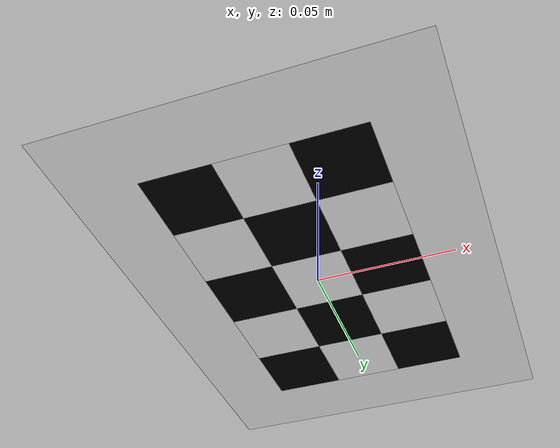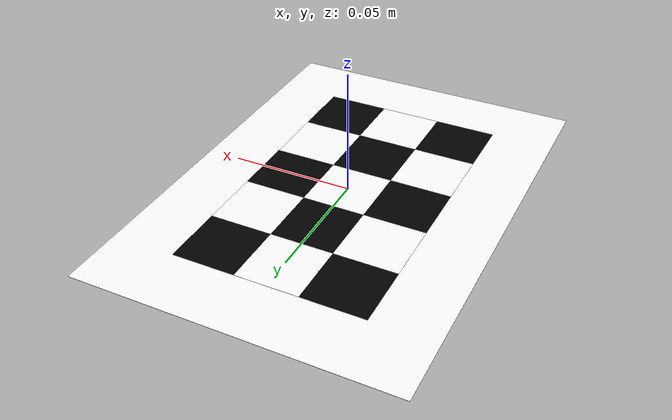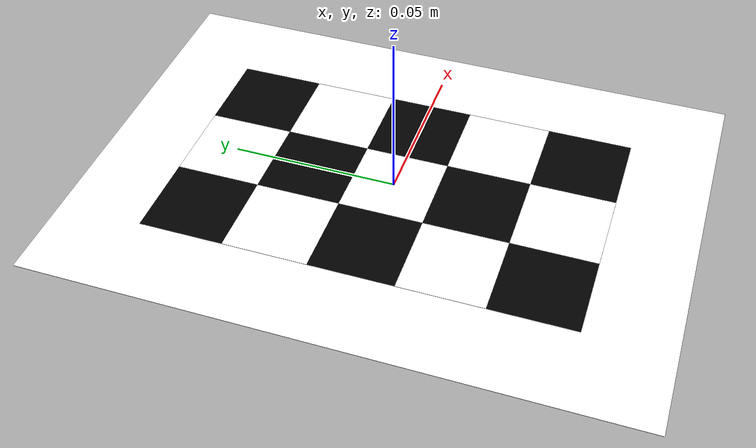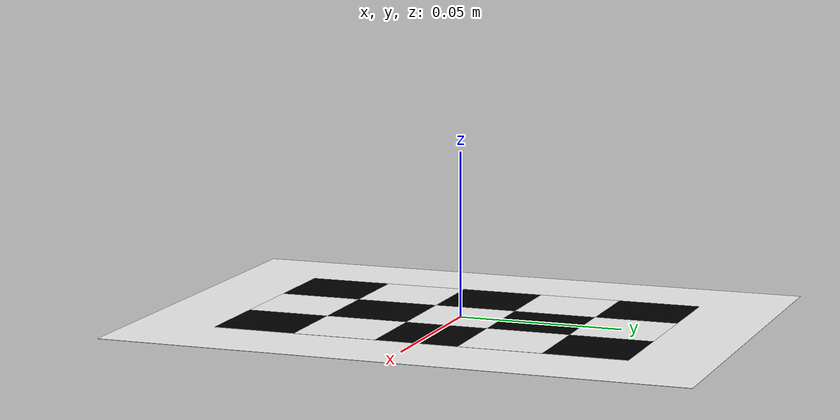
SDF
<?xml version="1.0"?>
<sdf version="1.4">
  <model name="checkerboard_3_5_0_0254">
  <static>true</static>
  <link name="checkerboard_3_5_0_0254_body">
      <visual name="checker_0_0">
        <pose>-0.0254 -0.0508 0 0 0 0</pose>
        <geometry>
          <box>
            <size>0.0254 0.0254 0.0002</size>
          </box>
        </geometry>
        <material>
          <ambient>0 0 0 1</ambient>
          <diffuse>0 0 0 1</diffuse>
          <specular>0 0 0 1</specular>
          <emissive>0 0 0 1</emissive>
        </material>
        <plugin
            filename="ignition-gazebo-thermal-system"
            name="ignition::gazebo::systems::Thermal">
            <temperature>311.0</temperature>
        </plugin>
      </visual>
      <visual name="checker_0_1">
        <pose>-0.0254 -0.0254 0 0 0 0</pose>
        <geometry>
          <box>
            <size>0.0254 0.0254 0.0002</size>
          </box>
        </geometry>
        <material>
          <ambient>1 1 1 1</ambient>
          <diffuse>1 1 1 1</diffuse>
          <specular>1 1 1 1</specular>
          <emissive>1 1 1 1</emissive>
        </material>
        <plugin
            filename="ignition-gazebo-thermal-system"
            name="ignition::gazebo::systems::Thermal">
            <temperature>311.0</temperature>
        </plugin>
      </visual>
      <visual name="checker_0_2">
        <pose>-0.0254 0.0 0 0 0 0</pose>
        <geometry>
          <box>
            <size>0.0254 0.0254 0.0002</size>
          </box>
        </geometry>
        <material>
          <ambient>0 0 0 1</ambient>
          <diffuse>0 0 0 1</diffuse>
          <specular>0 0 0 1</specular>
          <emissive>0 0 0 1</emissive>
        </material>
        <plugin
            filename="ignition-gazebo-thermal-system"
            name="ignition::gazebo::systems::Thermal">
            <temperature>311.0</temperature>
        </plugin>
      </visual>
      <visual name="checker_0_3">
        <pose>-0.0254 0.0254 0 0 0 0</pose>
        <geometry>
          <box>
            <size>0.0254 0.0254 0.0002</size>
          </box>
        </geometry>
        <material>
          <ambient>1 1 1 1</ambient>
          <diffuse>1 1 1 1</diffuse>
          <specular>1 1 1 1</specular>
          <emissive>1 1 1 1</emissive>
        </material>
        <plugin
            filename="ignition-gazebo-thermal-system"
            name="ignition::gazebo::systems::Thermal">
            <temperature>311.0</temperature>
        </plugin>
      </visual>
      <visual name="checker_0_4">
        <pose>-0.0254 0.0508 0 0 0 0</pose>
        <geometry>
          <box>
            <size>0.0254 0.0254 0.0002</size>
          </box>
        </geometry>
        <material>
          <ambient>0 0 0 1</ambient>
          <diffuse>0 0 0 1</diffuse>
          <specular>0 0 0 1</specular>
          <emissive>0 0 0 1</emissive>
        </material>
        <plugin
            filename="ignition-gazebo-thermal-system"
            name="ignition::gazebo::systems::Thermal">
            <temperature>311.0</temperature>
        </plugin>
      </visual>
      <visual name="checker_1_0">
        <pose>0.0 -0.0508 0 0 0 0</pose>
        <geometry>
          <box>
            <size>0.0254 0.0254 0.0002</size>
          </box>
        </geometry>
        <material>
          <ambient>1 1 1 1</ambient>
          <diffuse>1 1 1 1</diffuse>
          <specular>1 1 1 1</specular>
          <emissive>1 1 1 1</emissive>
        </material>
        <plugin
            filename="ignition-gazebo-thermal-system"
            name="ignition::gazebo::systems::Thermal">
            <temperature>311.0</temperature>
        </plugin>
      </visual>
      <visual name="checker_1_1">
        <pose>0.0 -0.0254 0 0 0 0</pose>
        <geometry>
          <box>
            <size>0.0254 0.0254 0.0002</size>
          </box>
        </geometry>
        <material>
          <ambient>0 0 0 1</ambient>
          <diffuse>0 0 0 1</diffuse>
          <specular>0 0 0 1</specular>
          <emissive>0 0 0 1</emissive>
        </material>
        <plugin
            filename="ignition-gazebo-thermal-system"
            name="ignition::gazebo::systems::Thermal">
            <temperature>311.0</temperature>
        </plugin>
      </visual>
      <visual name="checker_1_2">
        <pose>0.0 0.0 0 0 0 0</pose>
        <geometry>
          <box>
            <size>0.0254 0.0254 0.0002</size>
          </box>
        </geometry>
        <material>
          <ambient>1 1 1 1</ambient>
          <diffuse>1 1 1 1</diffuse>
          <specular>1 1 1 1</specular>
          <emissive>1 1 1 1</emissive>
        </material>
        <plugin
            filename="ignition-gazebo-thermal-system"
            name="ignition::gazebo::systems::Thermal">
            <temperature>311.0</temperature>
        </plugin>
      </visual>
      <visual name="checker_1_3">
        <pose>0.0 0.0254 0 0 0 0</pose>
        <geometry>
          <box>
            <size>0.0254 0.0254 0.0002</size>
          </box>
        </geometry>
        <material>
          <ambient>0 0 0 1</ambient>
          <diffuse>0 0 0 1</diffuse>
          <specular>0 0 0 1</specular>
          <emissive>0 0 0 1</emissive>
        </material>
        <plugin
            filename="ignition-gazebo-thermal-system"
            name="ignition::gazebo::systems::Thermal">
            <temperature>311.0</temperature>
        </plugin>
      </visual>
      <visual name="checker_1_4">
        <pose>0.0 0.0508 0 0 0 0</pose>
        <geometry>
          <box>
            <size>0.0254 0.0254 0.0002</size>
          </box>
        </geometry>
        <material>
          <ambient>1 1 1 1</ambient>
          <diffuse>1 1 1 1</diffuse>
          <specular>1 1 1 1</specular>
          <emissive>1 1 1 1</emissive>
        </material>
        <plugin
            filename="ignition-gazebo-thermal-system"
            name="ignition::gazebo::systems::Thermal">
            <temperature>311.0</temperature>
        </plugin>
      </visual>
      <visual name="checker_2_0">
        <pose>0.0254 -0.0508 0 0 0 0</pose>
        <geometry>
          <box>
            <size>0.0254 0.0254 0.0002</size>
          </box>
        </geometry>
        <material>
          <ambient>0 0 0 1</ambient>
          <diffuse>0 0 0 1</diffuse>
          <specular>0 0 0 1</specular>
          <emissive>0 0 0 1</emissive>
        </material>
        <plugin
            filename="ignition-gazebo-thermal-system"
            name="ignition::gazebo::systems::Thermal">
            <temperature>311.0</temperature>
        </plugin>
      </visual>
      <visual name="checker_2_1">
        <pose>0.0254 -0.0254 0 0 0 0</pose>
        <geometry>
          <box>
            <size>0.0254 0.0254 0.0002</size>
          </box>
        </geometry>
        <material>
          <ambient>1 1 1 1</ambient>
          <diffuse>1 1 1 1</diffuse>
          <specular>1 1 1 1</specular>
          <emissive>1 1 1 1</emissive>
        </material>
        <plugin
            filename="ignition-gazebo-thermal-system"
            name="ignition::gazebo::systems::Thermal">
            <temperature>311.0</temperature>
        </plugin>
      </visual>
      <visual name="checker_2_2">
        <pose>0.0254 0.0 0 0 0 0</pose>
        <geometry>
          <box>
            <size>0.0254 0.0254 0.0002</size>
          </box>
        </geometry>
        <material>
          <ambient>0 0 0 1</ambient>
          <diffuse>0 0 0 1</diffuse>
          <specular>0 0 0 1</specular>
          <emissive>0 0 0 1</emissive>
        </material>
        <plugin
            filename="ignition-gazebo-thermal-system"
            name="ignition::gazebo::systems::Thermal">
            <temperature>311.0</temperature>
        </plugin>
      </visual>
      <visual name="checker_2_3">
        <pose>0.0254 0.0254 0 0 0 0</pose>
        <geometry>
          <box>
            <size>0.0254 0.0254 0.0002</size>
          </box>
        </geometry>
        <material>
          <ambient>1 1 1 1</ambient>
          <diffuse>1 1 1 1</diffuse>
          <specular>1 1 1 1</specular>
          <emissive>1 1 1 1</emissive>
        </material>
        <plugin
            filename="ignition-gazebo-thermal-system"
            name="ignition::gazebo::systems::Thermal">
            <temperature>311.0</temperature>
        </plugin>
      </visual>
      <visual name="checker_2_4">
        <pose>0.0254 0.0508 0 0 0 0</pose>
        <geometry>
          <box>
            <size>0.0254 0.0254 0.0002</size>
          </box>
        </geometry>
        <material>
          <ambient>0 0 0 1</ambient>
          <diffuse>0 0 0 1</diffuse>
          <specular>0 0 0 1</specular>
          <emissive>0 0 0 1</emissive>
        </material>
        <plugin
            filename="ignition-gazebo-thermal-system"
            name="ignition::gazebo::systems::Thermal">
            <temperature>311.0</temperature>
        </plugin>
      </visual>
      <visual name="checker_backdrop">
        <pose>0 0 0 0 0 0</pose>
        <geometry>
          <box>
            <size>0.127 0.1778 0.0001</size>
          </box>
        </geometry>
        <material>
          <ambient>1 1 1 1</ambient>
          <diffuse>1 1 1 1</diffuse>
          <specular>1 1 1 1</specular>
          <emissive>1 1 1 1</emissive>
        </material>
        <plugin
            filename="ignition-gazebo-thermal-system"
            name="ignition::gazebo::systems::Thermal">
            <temperature>311.0</temperature>
        </plugin>
      </visual>
    </link>
  </model>
</sdf>
